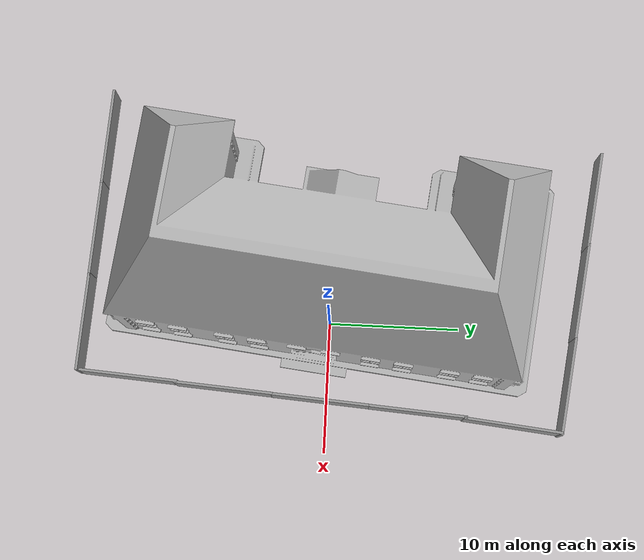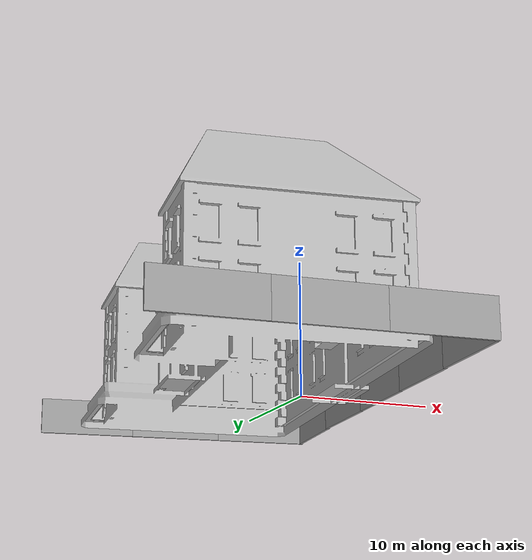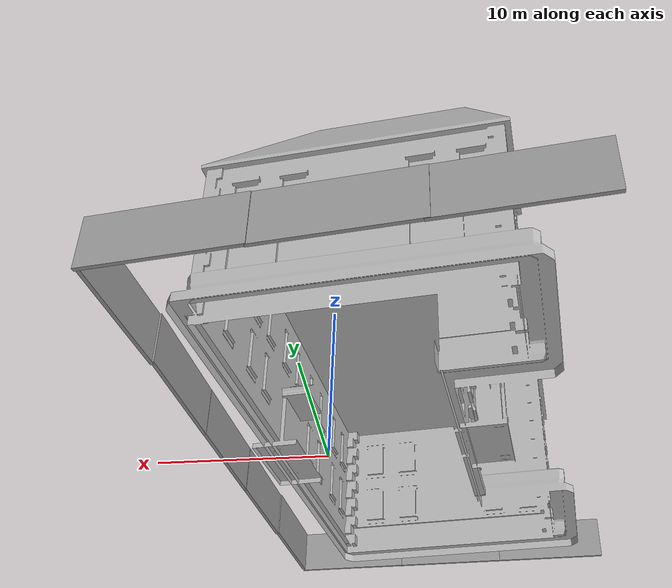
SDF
<?xml version='1.0'?>
<sdf version='1.7'>
  <model name='school'>
    <model name='grey_wall'>
      <static>1</static>
      <link name='link'>
        <pose>0 0 1.4 0 -0 0</pose>
        <collision name='collision'>
          <geometry>
            <box>
              <size>7.5 0.2 2.8</size>
            </box>
          </geometry>
        </collision>
        <visual name='visual'>
          <cast_shadows>0</cast_shadows>
          <geometry>
            <box>
              <size>7.5 0.2 2.8</size>
            </box>
          </geometry>
          <material>
            <script>
              <uri>model://grey_wall/materials/scripts</uri>
              <uri>model://grey_wall/materials/textures</uri>
              <name>vrc/grey_wall</name>
            </script>
          </material>
        </visual>
      </link>
      <pose>-10.2372 20.0993 0 0 0 -0.127657</pose>
    </model>
    <model name='grey_wall_clone'>
      <static>1</static>
      <link name='link'>
        <pose>0 0 1.4 0 -0 0</pose>
        <collision name='collision'>
          <geometry>
            <box>
              <size>7.5 0.2 2.8</size>
            </box>
          </geometry>
        </collision>
        <visual name='visual'>
          <cast_shadows>0</cast_shadows>
          <geometry>
            <box>
              <size>7.5 0.2 2.8</size>
            </box>
          </geometry>
          <material>
            <script>
              <uri>model://grey_wall/materials/scripts</uri>
              <uri>model://grey_wall/materials/textures</uri>
              <name>vrc/grey_wall</name>
            </script>
          </material>
        </visual>
      </link>
      <pose>-3.06158 19.2075 0 0 0 -0.127657</pose>
    </model>
    <model name='grey_wall_clone_0'>
      <static>1</static>
      <link name='link'>
        <pose>0 0 1.4 0 -0 0</pose>
        <collision name='collision'>
          <geometry>
            <box>
              <size>7.5 0.2 2.8</size>
            </box>
          </geometry>
        </collision>
        <visual name='visual'>
          <cast_shadows>0</cast_shadows>
          <geometry>
            <box>
              <size>7.5 0.2 2.8</size>
            </box>
          </geometry>
          <material>
            <script>
              <uri>model://grey_wall/materials/scripts</uri>
              <uri>model://grey_wall/materials/textures</uri>
              <name>vrc/grey_wall</name>
            </script>
          </material>
        </visual>
      </link>
      <pose>4.2914 18.3052 0 0 0 -0.127657</pose>
    </model>
    <model name='grey_wall_clone_1'>
      <static>1</static>
      <link name='link'>
        <pose>0 0 1.4 0 -0 0</pose>
        <collision name='collision'>
          <geometry>
            <box>
              <size>7.5 0.2 2.8</size>
            </box>
          </geometry>
        </collision>
        <visual name='visual'>
          <cast_shadows>0</cast_shadows>
          <geometry>
            <box>
              <size>7.5 0.2 2.8</size>
            </box>
          </geometry>
          <material>
            <script>
              <uri>model://grey_wall/materials/scripts</uri>
              <uri>model://grey_wall/materials/textures</uri>
              <name>vrc/grey_wall</name>
            </script>
          </material>
        </visual>
      </link>
      <pose>7.42297 14.1864 0 0 0 -1.67965</pose>
    </model>
    <model name='grey_wall_clone_1_clone'>
      <static>1</static>
      <link name='link'>
        <pose>0 0 1.4 0 -0 0</pose>
        <collision name='collision'>
          <geometry>
            <box>
              <size>7.5 0.2 2.8</size>
            </box>
          </geometry>
        </collision>
        <visual name='visual'>
          <cast_shadows>0</cast_shadows>
          <geometry>
            <box>
              <size>7.5 0.2 2.8</size>
            </box>
          </geometry>
          <material>
            <script>
              <uri>model://grey_wall/materials/scripts</uri>
              <uri>model://grey_wall/materials/textures</uri>
              <name>vrc/grey_wall</name>
            </script>
          </material>
        </visual>
      </link>
      <pose>6.67024 6.98491 0 0 0 -1.64634</pose>
    </model>
    <model name='grey_wall_clone_1_clone_0'>
      <static>1</static>
      <link name='link'>
        <pose>0 0 1.4 0 -0 0</pose>
        <collision name='collision'>
          <geometry>
            <box>
              <size>7.5 0.2 2.8</size>
            </box>
          </geometry>
        </collision>
        <visual name='visual'>
          <cast_shadows>0</cast_shadows>
          <geometry>
            <box>
              <size>7.5 0.2 2.8</size>
            </box>
          </geometry>
          <material>
            <script>
              <uri>model://grey_wall/materials/scripts</uri>
              <uri>model://grey_wall/materials/textures</uri>
              <name>vrc/grey_wall</name>
            </script>
          </material>
        </visual>
      </link>
      <pose>6.09866 -0.445187 0 0 0 -1.64634</pose>
    </model>
    <model name='grey_wall_clone_1_clone_1'>
      <static>1</static>
      <link name='link'>
        <pose>0 0 1.4 0 -0 0</pose>
        <collision name='collision'>
          <geometry>
            <box>
              <size>7.5 0.2 2.8</size>
            </box>
          </geometry>
        </collision>
        <visual name='visual'>
          <cast_shadows>0</cast_shadows>
          <geometry>
            <box>
              <size>7.5 0.2 2.8</size>
            </box>
          </geometry>
          <material>
            <script>
              <uri>model://grey_wall/materials/scripts</uri>
              <uri>model://grey_wall/materials/textures</uri>
              <name>vrc/grey_wall</name>
            </script>
          </material>
        </visual>
      </link>
      <pose>5.5255 -7.79442 0 0 0 -1.64634</pose>
    </model>
    <model name='grey_wall_clone_1_clone_2'>
      <static>1</static>
      <link name='link'>
        <pose>0 0 1.4 0 -0 0</pose>
        <collision name='collision'>
          <geometry>
            <box>
              <size>7.5 0.2 2.8</size>
            </box>
          </geometry>
        </collision>
        <visual name='visual'>
          <cast_shadows>0</cast_shadows>
          <geometry>
            <box>
              <size>7.5 0.2 2.8</size>
            </box>
          </geometry>
          <material>
            <script>
              <uri>model://grey_wall/materials/scripts</uri>
              <uri>model://grey_wall/materials/textures</uri>
              <name>vrc/grey_wall</name>
            </script>
          </material>
        </visual>
      </link>
      <pose>4.90627 -15.0519 0 0 0 -1.64634</pose>
    </model>
    <model name='grey_wall_clone_1_clone_3'>
      <static>1</static>
      <link name='link'>
        <pose>0 0 1.4 0 -0 0</pose>
        <collision name='collision'>
          <geometry>
            <box>
              <size>7.5 0.2 2.8</size>
            </box>
          </geometry>
        </collision>
        <visual name='visual'>
          <cast_shadows>0</cast_shadows>
          <geometry>
            <box>
              <size>7.5 0.2 2.8</size>
            </box>
          </geometry>
          <material>
            <script>
              <uri>model://grey_wall/materials/scripts</uri>
              <uri>model://grey_wall/materials/textures</uri>
              <name>vrc/grey_wall</name>
            </script>
          </material>
        </visual>
      </link>
      <pose>0.933286 -18.7896 0 0 0 -0.059434</pose>
    </model>
    <model name='grey_wall_clone_1_clone_3_clone'>
      <static>1</static>
      <link name='link'>
        <pose>0 0 1.4 0 -0 0</pose>
        <collision name='collision'>
          <geometry>
            <box>
              <size>7.5 0.2 2.8</size>
            </box>
          </geometry>
        </collision>
        <visual name='visual'>
          <cast_shadows>0</cast_shadows>
          <geometry>
            <box>
              <size>7.5 0.2 2.8</size>
            </box>
          </geometry>
          <material>
            <script>
              <uri>model://grey_wall/materials/scripts</uri>
              <uri>model://grey_wall/materials/textures</uri>
              <name>vrc/grey_wall</name>
            </script>
          </material>
        </visual>
      </link>
      <pose>-6.33469 -18.3642 0 0 0 -0.059434</pose>
    </model>
    <model name='grey_wall_clone_1_clone_3_clone_0'>
      <static>1</static>
      <link name='link'>
        <pose>0 0 1.4 0 -0 0</pose>
        <collision name='collision'>
          <geometry>
            <box>
              <size>7.5 0.2 2.8</size>
            </box>
          </geometry>
        </collision>
        <visual name='visual'>
          <cast_shadows>0</cast_shadows>
          <geometry>
            <box>
              <size>7.5 0.2 2.8</size>
            </box>
          </geometry>
          <material>
            <script>
              <uri>model://grey_wall/materials/scripts</uri>
              <uri>model://grey_wall/materials/textures</uri>
              <name>vrc/grey_wall</name>
            </script>
          </material>
        </visual>
      </link>
      <pose>-13.6877 -17.9325 0 0 0 -0.059434</pose>
    </model>
    <model name='school'>
      <static>1</static>
      <link name='link'>
        <collision name='collision'>
          <geometry>
            <mesh>
              <uri>model://school/meshes/school.dae</uri>
            </mesh>
          </geometry>
        </collision>
        <visual name='visual'>
          <geometry>
            <mesh>
              <uri>model://school/meshes/school.dae</uri>
            </mesh>
          </geometry>
        </visual>
      </link>
      <pose>-2.52723 -0.405316 0 0 0 -1.69038</pose>
    </model>
    <static>0</static>
    <allow_auto_disable>1</allow_auto_disable>
  </model>
</sdf>
